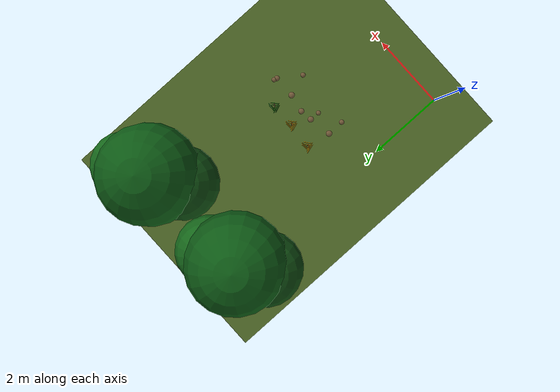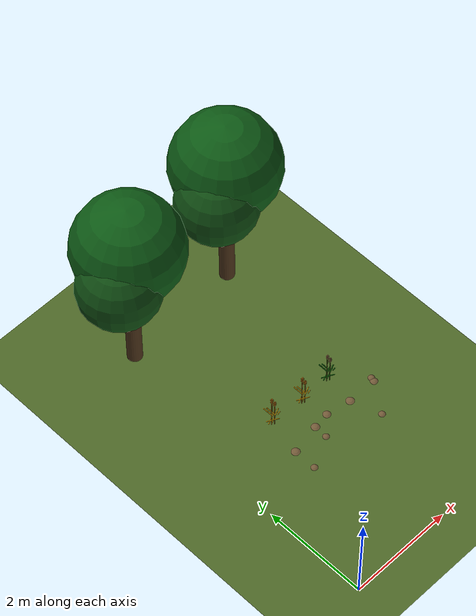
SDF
<sdf version="1.6">
 <world name="default">
  <model name="ground">
   <static>true</static>
   <link name="link">
    <collision name="col"><geometry><plane><normal>0 0 1</normal><size>40 40</size></plane></geometry></collision>
    <visual name="vis">
     <geometry><plane><normal>0 0 1</normal><size>40 40</size></plane></geometry>
     <material><ambient>0.30 0.40 0.15 1</ambient><diffuse>0.30 0.40 0.15 1</diffuse></material>
    </visual>
   </link>
  </model>
  <model name="plant_31">
   <static>true</static>
   <pose>1.27 3.26 0 0 0 0</pose>
   <link name="link">
    <visual name="stem_0">
     <pose>0.000 0.000 0.320 0.000 0.000 0.000</pose>
     <geometry><cylinder><radius>0.01</radius><length>0.64</length></cylinder></geometry>
     <material><ambient>0.55 0.42 0.08 1</ambient><diffuse>0.55 0.42 0.08 1</diffuse></material>
    </visual>
    <visual name="leaf_0_0">
     <pose>0.055 0.045 0.130 0.000 0.700 0.150</pose>
     <geometry><cylinder><radius>0.009</radius><length>0.3</length></cylinder></geometry>
     <material><ambient>0.95 0.73 0.06 1</ambient><diffuse>0.95 0.73 0.06 1</diffuse></material>
    </visual>
    <visual name="leaf_0_1">
     <pose>-0.055 -0.045 0.230 0.000 -0.720 1.900</pose>
     <geometry><cylinder><radius>0.009</radius><length>0.28</length></cylinder></geometry>
     <material><ambient>0.95 0.73 0.06 1</ambient><diffuse>0.95 0.73 0.06 1</diffuse></material>
    </visual>
    <visual name="leaf_0_2">
     <pose>0.055 -0.045 0.320 0.000 0.780 3.700</pose>
     <geometry><cylinder><radius>0.009</radius><length>0.24</length></cylinder></geometry>
     <material><ambient>0.95 0.73 0.06 1</ambient><diffuse>0.95 0.73 0.06 1</diffuse></material>
    </visual>
    <visual name="leaf_0_3">
     <pose>-0.055 0.045 0.400 0.000 -0.800 5.200</pose>
     <geometry><cylinder><radius>0.009</radius><length>0.2</length></cylinder></geometry>
     <material><ambient>0.95 0.73 0.06 1</ambient><diffuse>0.95 0.73 0.06 1</diffuse></material>
    </visual>
    <visual name="stem_1">
     <pose>0.045 -0.025 0.265 0.000 0.000 0.000</pose>
     <geometry><cylinder><radius>0.008</radius><length>0.53</length></cylinder></geometry>
     <material><ambient>0.55 0.42 0.08 1</ambient><diffuse>0.55 0.42 0.08 1</diffuse></material>
    </visual>
    <visual name="leaf_1_0">
     <pose>0.100 0.020 0.130 0.000 0.700 0.150</pose>
     <geometry><cylinder><radius>0.009</radius><length>0.3</length></cylinder></geometry>
     <material><ambient>0.95 0.73 0.06 1</ambient><diffuse>0.95 0.73 0.06 1</diffuse></material>
    </visual>
    <visual name="leaf_1_1">
     <pose>-0.010 -0.070 0.230 0.000 -0.720 1.900</pose>
     <geometry><cylinder><radius>0.009</radius><length>0.28</length></cylinder></geometry>
     <material><ambient>0.95 0.73 0.06 1</ambient><diffuse>0.95 0.73 0.06 1</diffuse></material>
    </visual>
    <visual name="leaf_1_2">
     <pose>0.100 -0.070 0.320 0.000 0.780 3.700</pose>
     <geometry><cylinder><radius>0.009</radius><length>0.24</length></cylinder></geometry>
     <material><ambient>0.95 0.73 0.06 1</ambient><diffuse>0.95 0.73 0.06 1</diffuse></material>
    </visual>
    <visual name="leaf_1_3">
     <pose>-0.010 0.020 0.400 0.000 -0.800 5.200</pose>
     <geometry><cylinder><radius>0.009</radius><length>0.2</length></cylinder></geometry>
     <material><ambient>0.95 0.73 0.06 1</ambient><diffuse>0.95 0.73 0.06 1</diffuse></material>
    </visual>
    <visual name="ear_axis_0">
     <pose>0.000 0.000 0.715 0.000 0.000 0.000</pose>
     <geometry><cylinder><radius>0.010</radius><length>0.13</length></cylinder></geometry>
     <material><ambient>0.72 0.45 0.08 1</ambient><diffuse>0.72 0.45 0.08 1</diffuse></material>
    </visual>
    <visual name="grain_0_0">
     <pose>0.012 -0.006 0.675 0.000 0.000 0.000</pose>
     <geometry><sphere><radius>0.012</radius></sphere></geometry>
     <material><ambient>0.72 0.45 0.08 1</ambient><diffuse>0.72 0.45 0.08 1</diffuse></material>
    </visual>
    <visual name="grain_0_1">
     <pose>-0.014 0.006 0.691 0.000 0.000 0.000</pose>
     <geometry><sphere><radius>0.012</radius></sphere></geometry>
     <material><ambient>0.72 0.45 0.08 1</ambient><diffuse>0.72 0.45 0.08 1</diffuse></material>
    </visual>
    <visual name="grain_0_2">
     <pose>0.016 -0.006 0.707 0.000 0.000 0.000</pose>
     <geometry><sphere><radius>0.012</radius></sphere></geometry>
     <material><ambient>0.72 0.45 0.08 1</ambient><diffuse>0.72 0.45 0.08 1</diffuse></material>
    </visual>
    <visual name="grain_0_3">
     <pose>-0.012 0.006 0.723 0.000 0.000 0.000</pose>
     <geometry><sphere><radius>0.012</radius></sphere></geometry>
     <material><ambient>0.72 0.45 0.08 1</ambient><diffuse>0.72 0.45 0.08 1</diffuse></material>
    </visual>
    <visual name="grain_0_4">
     <pose>0.014 -0.006 0.739 0.000 0.000 0.000</pose>
     <geometry><sphere><radius>0.012</radius></sphere></geometry>
     <material><ambient>0.72 0.45 0.08 1</ambient><diffuse>0.72 0.45 0.08 1</diffuse></material>
    </visual>
    <visual name="grain_0_5">
     <pose>-0.016 0.006 0.755 0.000 0.000 0.000</pose>
     <geometry><sphere><radius>0.012</radius></sphere></geometry>
     <material><ambient>0.72 0.45 0.08 1</ambient><diffuse>0.72 0.45 0.08 1</diffuse></material>
    </visual>
    <visual name="ear_axis_1">
     <pose>0.045 -0.025 0.605 0.000 0.000 0.000</pose>
     <geometry><cylinder><radius>0.010</radius><length>0.13</length></cylinder></geometry>
     <material><ambient>0.72 0.45 0.08 1</ambient><diffuse>0.72 0.45 0.08 1</diffuse></material>
    </visual>
    <visual name="grain_1_0">
     <pose>0.057 -0.031 0.565 0.000 0.000 0.000</pose>
     <geometry><sphere><radius>0.012</radius></sphere></geometry>
     <material><ambient>0.72 0.45 0.08 1</ambient><diffuse>0.72 0.45 0.08 1</diffuse></material>
    </visual>
    <visual name="grain_1_1">
     <pose>0.031 -0.019 0.581 0.000 0.000 0.000</pose>
     <geometry><sphere><radius>0.012</radius></sphere></geometry>
     <material><ambient>0.72 0.45 0.08 1</ambient><diffuse>0.72 0.45 0.08 1</diffuse></material>
    </visual>
    <visual name="grain_1_2">
     <pose>0.061 -0.031 0.597 0.000 0.000 0.000</pose>
     <geometry><sphere><radius>0.012</radius></sphere></geometry>
     <material><ambient>0.72 0.45 0.08 1</ambient><diffuse>0.72 0.45 0.08 1</diffuse></material>
    </visual>
    <visual name="grain_1_3">
     <pose>0.033 -0.019 0.613 0.000 0.000 0.000</pose>
     <geometry><sphere><radius>0.012</radius></sphere></geometry>
     <material><ambient>0.72 0.45 0.08 1</ambient><diffuse>0.72 0.45 0.08 1</diffuse></material>
    </visual>
    <visual name="grain_1_4">
     <pose>0.059 -0.031 0.629 0.000 0.000 0.000</pose>
     <geometry><sphere><radius>0.012</radius></sphere></geometry>
     <material><ambient>0.72 0.45 0.08 1</ambient><diffuse>0.72 0.45 0.08 1</diffuse></material>
    </visual>
    <visual name="grain_1_5">
     <pose>0.029 -0.019 0.645 0.000 0.000 0.000</pose>
     <geometry><sphere><radius>0.012</radius></sphere></geometry>
     <material><ambient>0.72 0.45 0.08 1</ambient><diffuse>0.72 0.45 0.08 1</diffuse></material>
    </visual>
   </link>
  </model>
  <model name="plant_32">
   <static>true</static>
   <pose>1.94 3.20 0 0 0 0</pose>
   <link name="link">
    <visual name="stem_0">
     <pose>0.000 0.000 0.320 0.000 0.000 0.000</pose>
     <geometry><cylinder><radius>0.01</radius><length>0.64</length></cylinder></geometry>
     <material><ambient>0.55 0.42 0.08 1</ambient><diffuse>0.55 0.42 0.08 1</diffuse></material>
    </visual>
    <visual name="leaf_0_0">
     <pose>0.055 0.045 0.130 0.000 0.700 0.150</pose>
     <geometry><cylinder><radius>0.009</radius><length>0.3</length></cylinder></geometry>
     <material><ambient>0.95 0.73 0.06 1</ambient><diffuse>0.95 0.73 0.06 1</diffuse></material>
    </visual>
    <visual name="leaf_0_1">
     <pose>-0.055 -0.045 0.230 0.000 -0.720 1.900</pose>
     <geometry><cylinder><radius>0.009</radius><length>0.28</length></cylinder></geometry>
     <material><ambient>0.95 0.73 0.06 1</ambient><diffuse>0.95 0.73 0.06 1</diffuse></material>
    </visual>
    <visual name="leaf_0_2">
     <pose>0.055 -0.045 0.320 0.000 0.780 3.700</pose>
     <geometry><cylinder><radius>0.009</radius><length>0.24</length></cylinder></geometry>
     <material><ambient>0.95 0.73 0.06 1</ambient><diffuse>0.95 0.73 0.06 1</diffuse></material>
    </visual>
    <visual name="leaf_0_3">
     <pose>-0.055 0.045 0.400 0.000 -0.800 5.200</pose>
     <geometry><cylinder><radius>0.009</radius><length>0.2</length></cylinder></geometry>
     <material><ambient>0.95 0.73 0.06 1</ambient><diffuse>0.95 0.73 0.06 1</diffuse></material>
    </visual>
    <visual name="stem_1">
     <pose>0.045 -0.025 0.265 0.000 0.000 0.000</pose>
     <geometry><cylinder><radius>0.008</radius><length>0.53</length></cylinder></geometry>
     <material><ambient>0.55 0.42 0.08 1</ambient><diffuse>0.55 0.42 0.08 1</diffuse></material>
    </visual>
    <visual name="leaf_1_0">
     <pose>0.100 0.020 0.130 0.000 0.700 0.150</pose>
     <geometry><cylinder><radius>0.009</radius><length>0.3</length></cylinder></geometry>
     <material><ambient>0.95 0.73 0.06 1</ambient><diffuse>0.95 0.73 0.06 1</diffuse></material>
    </visual>
    <visual name="leaf_1_1">
     <pose>-0.010 -0.070 0.230 0.000 -0.720 1.900</pose>
     <geometry><cylinder><radius>0.009</radius><length>0.28</length></cylinder></geometry>
     <material><ambient>0.95 0.73 0.06 1</ambient><diffuse>0.95 0.73 0.06 1</diffuse></material>
    </visual>
    <visual name="leaf_1_2">
     <pose>0.100 -0.070 0.320 0.000 0.780 3.700</pose>
     <geometry><cylinder><radius>0.009</radius><length>0.24</length></cylinder></geometry>
     <material><ambient>0.95 0.73 0.06 1</ambient><diffuse>0.95 0.73 0.06 1</diffuse></material>
    </visual>
    <visual name="leaf_1_3">
     <pose>-0.010 0.020 0.400 0.000 -0.800 5.200</pose>
     <geometry><cylinder><radius>0.009</radius><length>0.2</length></cylinder></geometry>
     <material><ambient>0.95 0.73 0.06 1</ambient><diffuse>0.95 0.73 0.06 1</diffuse></material>
    </visual>
    <visual name="ear_axis_0">
     <pose>0.000 0.000 0.715 0.000 0.000 0.000</pose>
     <geometry><cylinder><radius>0.010</radius><length>0.13</length></cylinder></geometry>
     <material><ambient>0.72 0.45 0.08 1</ambient><diffuse>0.72 0.45 0.08 1</diffuse></material>
    </visual>
    <visual name="grain_0_0">
     <pose>0.012 -0.006 0.675 0.000 0.000 0.000</pose>
     <geometry><sphere><radius>0.012</radius></sphere></geometry>
     <material><ambient>0.72 0.45 0.08 1</ambient><diffuse>0.72 0.45 0.08 1</diffuse></material>
    </visual>
    <visual name="grain_0_1">
     <pose>-0.014 0.006 0.691 0.000 0.000 0.000</pose>
     <geometry><sphere><radius>0.012</radius></sphere></geometry>
     <material><ambient>0.72 0.45 0.08 1</ambient><diffuse>0.72 0.45 0.08 1</diffuse></material>
    </visual>
    <visual name="grain_0_2">
     <pose>0.016 -0.006 0.707 0.000 0.000 0.000</pose>
     <geometry><sphere><radius>0.012</radius></sphere></geometry>
     <material><ambient>0.72 0.45 0.08 1</ambient><diffuse>0.72 0.45 0.08 1</diffuse></material>
    </visual>
    <visual name="grain_0_3">
     <pose>-0.012 0.006 0.723 0.000 0.000 0.000</pose>
     <geometry><sphere><radius>0.012</radius></sphere></geometry>
     <material><ambient>0.72 0.45 0.08 1</ambient><diffuse>0.72 0.45 0.08 1</diffuse></material>
    </visual>
    <visual name="grain_0_4">
     <pose>0.014 -0.006 0.739 0.000 0.000 0.000</pose>
     <geometry><sphere><radius>0.012</radius></sphere></geometry>
     <material><ambient>0.72 0.45 0.08 1</ambient><diffuse>0.72 0.45 0.08 1</diffuse></material>
    </visual>
    <visual name="grain_0_5">
     <pose>-0.016 0.006 0.755 0.000 0.000 0.000</pose>
     <geometry><sphere><radius>0.012</radius></sphere></geometry>
     <material><ambient>0.72 0.45 0.08 1</ambient><diffuse>0.72 0.45 0.08 1</diffuse></material>
    </visual>
    <visual name="ear_axis_1">
     <pose>0.045 -0.025 0.605 0.000 0.000 0.000</pose>
     <geometry><cylinder><radius>0.010</radius><length>0.13</length></cylinder></geometry>
     <material><ambient>0.72 0.45 0.08 1</ambient><diffuse>0.72 0.45 0.08 1</diffuse></material>
    </visual>
    <visual name="grain_1_0">
     <pose>0.057 -0.031 0.565 0.000 0.000 0.000</pose>
     <geometry><sphere><radius>0.012</radius></sphere></geometry>
     <material><ambient>0.72 0.45 0.08 1</ambient><diffuse>0.72 0.45 0.08 1</diffuse></material>
    </visual>
    <visual name="grain_1_1">
     <pose>0.031 -0.019 0.581 0.000 0.000 0.000</pose>
     <geometry><sphere><radius>0.012</radius></sphere></geometry>
     <material><ambient>0.72 0.45 0.08 1</ambient><diffuse>0.72 0.45 0.08 1</diffuse></material>
    </visual>
    <visual name="grain_1_2">
     <pose>0.061 -0.031 0.597 0.000 0.000 0.000</pose>
     <geometry><sphere><radius>0.012</radius></sphere></geometry>
     <material><ambient>0.72 0.45 0.08 1</ambient><diffuse>0.72 0.45 0.08 1</diffuse></material>
    </visual>
    <visual name="grain_1_3">
     <pose>0.033 -0.019 0.613 0.000 0.000 0.000</pose>
     <geometry><sphere><radius>0.012</radius></sphere></geometry>
     <material><ambient>0.72 0.45 0.08 1</ambient><diffuse>0.72 0.45 0.08 1</diffuse></material>
    </visual>
    <visual name="grain_1_4">
     <pose>0.059 -0.031 0.629 0.000 0.000 0.000</pose>
     <geometry><sphere><radius>0.012</radius></sphere></geometry>
     <material><ambient>0.72 0.45 0.08 1</ambient><diffuse>0.72 0.45 0.08 1</diffuse></material>
    </visual>
    <visual name="grain_1_5">
     <pose>0.029 -0.019 0.645 0.000 0.000 0.000</pose>
     <geometry><sphere><radius>0.012</radius></sphere></geometry>
     <material><ambient>0.72 0.45 0.08 1</ambient><diffuse>0.72 0.45 0.08 1</diffuse></material>
    </visual>
   </link>
  </model>
  <model name="plant_33">
   <static>true</static>
   <pose>2.57 3.22 0 0 0 0</pose>
   <link name="link">
    <visual name="stem_0">
     <pose>0.000 0.000 0.320 0.000 0.000 0.000</pose>
     <geometry><cylinder><radius>0.01</radius><length>0.64</length></cylinder></geometry>
     <material><ambient>0.30 0.38 0.08 1</ambient><diffuse>0.30 0.38 0.08 1</diffuse></material>
    </visual>
    <visual name="leaf_0_0">
     <pose>0.055 0.045 0.130 0.000 0.700 0.150</pose>
     <geometry><cylinder><radius>0.009</radius><length>0.3</length></cylinder></geometry>
     <material><ambient>0.10 0.48 0.06 1</ambient><diffuse>0.10 0.48 0.06 1</diffuse></material>
    </visual>
    <visual name="leaf_0_1">
     <pose>-0.055 -0.045 0.230 0.000 -0.720 1.900</pose>
     <geometry><cylinder><radius>0.009</radius><length>0.28</length></cylinder></geometry>
     <material><ambient>0.10 0.48 0.06 1</ambient><diffuse>0.10 0.48 0.06 1</diffuse></material>
    </visual>
    <visual name="leaf_0_2">
     <pose>0.055 -0.045 0.320 0.000 0.780 3.700</pose>
     <geometry><cylinder><radius>0.009</radius><length>0.24</length></cylinder></geometry>
     <material><ambient>0.10 0.48 0.06 1</ambient><diffuse>0.10 0.48 0.06 1</diffuse></material>
    </visual>
    <visual name="leaf_0_3">
     <pose>-0.055 0.045 0.400 0.000 -0.800 5.200</pose>
     <geometry><cylinder><radius>0.009</radius><length>0.2</length></cylinder></geometry>
     <material><ambient>0.10 0.48 0.06 1</ambient><diffuse>0.10 0.48 0.06 1</diffuse></material>
    </visual>
    <visual name="stem_1">
     <pose>0.045 -0.025 0.265 0.000 0.000 0.000</pose>
     <geometry><cylinder><radius>0.008</radius><length>0.53</length></cylinder></geometry>
     <material><ambient>0.30 0.38 0.08 1</ambient><diffuse>0.30 0.38 0.08 1</diffuse></material>
    </visual>
    <visual name="leaf_1_0">
     <pose>0.100 0.020 0.130 0.000 0.700 0.150</pose>
     <geometry><cylinder><radius>0.009</radius><length>0.3</length></cylinder></geometry>
     <material><ambient>0.10 0.48 0.06 1</ambient><diffuse>0.10 0.48 0.06 1</diffuse></material>
    </visual>
    <visual name="leaf_1_1">
     <pose>-0.010 -0.070 0.230 0.000 -0.720 1.900</pose>
     <geometry><cylinder><radius>0.009</radius><length>0.28</length></cylinder></geometry>
     <material><ambient>0.10 0.48 0.06 1</ambient><diffuse>0.10 0.48 0.06 1</diffuse></material>
    </visual>
    <visual name="leaf_1_2">
     <pose>0.100 -0.070 0.320 0.000 0.780 3.700</pose>
     <geometry><cylinder><radius>0.009</radius><length>0.24</length></cylinder></geometry>
     <material><ambient>0.10 0.48 0.06 1</ambient><diffuse>0.10 0.48 0.06 1</diffuse></material>
    </visual>
    <visual name="leaf_1_3">
     <pose>-0.010 0.020 0.400 0.000 -0.800 5.200</pose>
     <geometry><cylinder><radius>0.009</radius><length>0.2</length></cylinder></geometry>
     <material><ambient>0.10 0.48 0.06 1</ambient><diffuse>0.10 0.48 0.06 1</diffuse></material>
    </visual>
    <visual name="ear_axis_0">
     <pose>0.000 0.000 0.715 0.000 0.000 0.000</pose>
     <geometry><cylinder><radius>0.010</radius><length>0.13</length></cylinder></geometry>
     <material><ambient>0.52 0.40 0.25 1</ambient><diffuse>0.52 0.40 0.25 1</diffuse></material>
    </visual>
    <visual name="grain_0_0">
     <pose>0.012 -0.006 0.675 0.000 0.000 0.000</pose>
     <geometry><sphere><radius>0.012</radius></sphere></geometry>
     <material><ambient>0.52 0.40 0.25 1</ambient><diffuse>0.52 0.40 0.25 1</diffuse></material>
    </visual>
    <visual name="grain_0_1">
     <pose>-0.014 0.006 0.691 0.000 0.000 0.000</pose>
     <geometry><sphere><radius>0.012</radius></sphere></geometry>
     <material><ambient>0.52 0.40 0.25 1</ambient><diffuse>0.52 0.40 0.25 1</diffuse></material>
    </visual>
    <visual name="grain_0_2">
     <pose>0.016 -0.006 0.707 0.000 0.000 0.000</pose>
     <geometry><sphere><radius>0.012</radius></sphere></geometry>
     <material><ambient>0.52 0.40 0.25 1</ambient><diffuse>0.52 0.40 0.25 1</diffuse></material>
    </visual>
    <visual name="grain_0_3">
     <pose>-0.012 0.006 0.723 0.000 0.000 0.000</pose>
     <geometry><sphere><radius>0.012</radius></sphere></geometry>
     <material><ambient>0.52 0.40 0.25 1</ambient><diffuse>0.52 0.40 0.25 1</diffuse></material>
    </visual>
    <visual name="grain_0_4">
     <pose>0.014 -0.006 0.739 0.000 0.000 0.000</pose>
     <geometry><sphere><radius>0.012</radius></sphere></geometry>
     <material><ambient>0.52 0.40 0.25 1</ambient><diffuse>0.52 0.40 0.25 1</diffuse></material>
    </visual>
    <visual name="grain_0_5">
     <pose>-0.016 0.006 0.755 0.000 0.000 0.000</pose>
     <geometry><sphere><radius>0.012</radius></sphere></geometry>
     <material><ambient>0.52 0.40 0.25 1</ambient><diffuse>0.52 0.40 0.25 1</diffuse></material>
    </visual>
    <visual name="ear_axis_1">
     <pose>0.045 -0.025 0.605 0.000 0.000 0.000</pose>
     <geometry><cylinder><radius>0.010</radius><length>0.13</length></cylinder></geometry>
     <material><ambient>0.52 0.40 0.25 1</ambient><diffuse>0.52 0.40 0.25 1</diffuse></material>
    </visual>
    <visual name="grain_1_0">
     <pose>0.057 -0.031 0.565 0.000 0.000 0.000</pose>
     <geometry><sphere><radius>0.012</radius></sphere></geometry>
     <material><ambient>0.52 0.40 0.25 1</ambient><diffuse>0.52 0.40 0.25 1</diffuse></material>
    </visual>
    <visual name="grain_1_1">
     <pose>0.031 -0.019 0.581 0.000 0.000 0.000</pose>
     <geometry><sphere><radius>0.012</radius></sphere></geometry>
     <material><ambient>0.52 0.40 0.25 1</ambient><diffuse>0.52 0.40 0.25 1</diffuse></material>
    </visual>
    <visual name="grain_1_2">
     <pose>0.061 -0.031 0.597 0.000 0.000 0.000</pose>
     <geometry><sphere><radius>0.012</radius></sphere></geometry>
     <material><ambient>0.52 0.40 0.25 1</ambient><diffuse>0.52 0.40 0.25 1</diffuse></material>
    </visual>
    <visual name="grain_1_3">
     <pose>0.033 -0.019 0.613 0.000 0.000 0.000</pose>
     <geometry><sphere><radius>0.012</radius></sphere></geometry>
     <material><ambient>0.52 0.40 0.25 1</ambient><diffuse>0.52 0.40 0.25 1</diffuse></material>
    </visual>
    <visual name="grain_1_4">
     <pose>0.059 -0.031 0.629 0.000 0.000 0.000</pose>
     <geometry><sphere><radius>0.012</radius></sphere></geometry>
     <material><ambient>0.52 0.40 0.25 1</ambient><diffuse>0.52 0.40 0.25 1</diffuse></material>
    </visual>
    <visual name="grain_1_5">
     <pose>0.029 -0.019 0.645 0.000 0.000 0.000</pose>
     <geometry><sphere><radius>0.012</radius></sphere></geometry>
     <material><ambient>0.52 0.40 0.25 1</ambient><diffuse>0.52 0.40 0.25 1</diffuse></material>
    </visual>
   </link>
  </model>
  <model name="tree_n1">
   <static>true</static>
   <pose>0.61 5.93 0 0 0 0</pose>
   <link name="link">
    <collision name="trunk_col">
     <pose>0 0 1.1 0 0 0</pose>
     <geometry><cylinder><radius>0.16</radius><length>2.2</length></cylinder></geometry>
    </collision>
    <visual name="trunk">
     <pose>0 0 1.1 0 0 0</pose>
     <geometry><cylinder><radius>0.14</radius><length>2.2</length></cylinder></geometry>
     <material><ambient>0.30 0.20 0.10 1</ambient><diffuse>0.30 0.20 0.10 1</diffuse></material>
    </visual>
    <visual name="crown1">
     <pose>0 0 3.1 0 0 0</pose>
     <geometry><sphere><radius>1.0</radius></sphere></geometry>
     <material><ambient>0.05 0.35 0.08 1</ambient><diffuse>0.05 0.35 0.08 1</diffuse></material>
    </visual>
    <visual name="crown2">
     <pose>0.5 0.3 2.7 0 0 0</pose>
     <geometry><sphere><radius>0.7</radius></sphere></geometry>
     <material><ambient>0.08 0.40 0.10 1</ambient><diffuse>0.08 0.40 0.10 1</diffuse></material>
    </visual>
    <visual name="crown3">
     <pose>-0.5 -0.3 2.8 0 0 0</pose>
     <geometry><sphere><radius>0.75</radius></sphere></geometry>
     <material><ambient>0.06 0.30 0.07 1</ambient><diffuse>0.06 0.30 0.07 1</diffuse></material>
    </visual>
   </link>
  </model>
  <model name="tree_n2">
   <static>true</static>
   <pose>2.96 6.04 0 0 0 0</pose>
   <link name="link">
    <collision name="trunk_col">
     <pose>0 0 1.1 0 0 0</pose>
     <geometry><cylinder><radius>0.16</radius><length>2.2</length></cylinder></geometry>
    </collision>
    <visual name="trunk">
     <pose>0 0 1.1 0 0 0</pose>
     <geometry><cylinder><radius>0.14</radius><length>2.2</length></cylinder></geometry>
     <material><ambient>0.30 0.20 0.10 1</ambient><diffuse>0.30 0.20 0.10 1</diffuse></material>
    </visual>
    <visual name="crown1">
     <pose>0 0 3.1 0 0 0</pose>
     <geometry><sphere><radius>1.0</radius></sphere></geometry>
     <material><ambient>0.05 0.35 0.08 1</ambient><diffuse>0.05 0.35 0.08 1</diffuse></material>
    </visual>
    <visual name="crown2">
     <pose>0.5 0.3 2.7 0 0 0</pose>
     <geometry><sphere><radius>0.7</radius></sphere></geometry>
     <material><ambient>0.08 0.40 0.10 1</ambient><diffuse>0.08 0.40 0.10 1</diffuse></material>
    </visual>
    <visual name="crown3">
     <pose>-0.5 -0.3 2.8 0 0 0</pose>
     <geometry><sphere><radius>0.75</radius></sphere></geometry>
     <material><ambient>0.06 0.30 0.07 1</ambient><diffuse>0.06 0.30 0.07 1</diffuse></material>
    </visual>
   </link>
  </model>
  <model name="bump_2_01">
   <static>true</static>
   <pose>1.75 2.44 -0.067 0 0 0</pose>
   <link name="link">
    <collision name="c"><geometry><sphere><radius>0.087</radius></sphere></geometry></collision>
    <visual name="v">
     <geometry><sphere><radius>0.087</radius></sphere></geometry>
     <material><ambient>0.45 0.35 0.22 1</ambient><diffuse>0.45 0.35 0.22 1</diffuse></material>
    </visual>
   </link>
  </model>
  <model name="bump_2_11">
   <static>true</static>
   <pose>3.16 2.72 -0.068 0 0 0</pose>
   <link name="link">
    <collision name="c"><geometry><sphere><radius>0.088</radius></sphere></geometry></collision>
    <visual name="v">
     <geometry><sphere><radius>0.088</radius></sphere></geometry>
     <material><ambient>0.45 0.35 0.22 1</ambient><diffuse>0.45 0.35 0.22 1</diffuse></material>
    </visual>
   </link>
  </model>
  <model name="bump_2_13">
   <static>true</static>
   <pose>2.75 2.08 -0.073 0 0 0</pose>
   <link name="link">
    <collision name="c"><geometry><sphere><radius>0.093</radius></sphere></geometry></collision>
    <visual name="v">
     <geometry><sphere><radius>0.093</radius></sphere></geometry>
     <material><ambient>0.45 0.35 0.22 1</ambient><diffuse>0.45 0.35 0.22 1</diffuse></material>
    </visual>
   </link>
  </model>
  <model name="bump_2_15">
   <static>true</static>
   <pose>2.08 2.74 -0.097 0 0 0</pose>
   <link name="link">
    <collision name="c"><geometry><sphere><radius>0.117</radius></sphere></geometry></collision>
    <visual name="v">
     <geometry><sphere><radius>0.117</radius></sphere></geometry>
     <material><ambient>0.45 0.35 0.22 1</ambient><diffuse>0.45 0.35 0.22 1</diffuse></material>
    </visual>
   </link>
  </model>
  <model name="bump_2_17">
   <static>true</static>
   <pose>1.17 2.59 -0.113 0 0 0</pose>
   <link name="link">
    <collision name="c"><geometry><sphere><radius>0.133</radius></sphere></geometry></collision>
    <visual name="v">
     <geometry><sphere><radius>0.133</radius></sphere></geometry>
     <material><ambient>0.45 0.35 0.22 1</ambient><diffuse>0.45 0.35 0.22 1</diffuse></material>
    </visual>
   </link>
  </model>
  <model name="bump_2_20">
   <static>true</static>
   <pose>1.76 2.70 -0.107 0 0 0</pose>
   <link name="link">
    <collision name="c"><geometry><sphere><radius>0.127</radius></sphere></geometry></collision>
    <visual name="v">
     <geometry><sphere><radius>0.127</radius></sphere></geometry>
     <material><ambient>0.45 0.35 0.22 1</ambient><diffuse>0.45 0.35 0.22 1</diffuse></material>
    </visual>
   </link>
  </model>
  <model name="bump_2_21">
   <static>true</static>
   <pose>2.56 2.65 -0.112 0 0 0</pose>
   <link name="link">
    <collision name="c"><geometry><sphere><radius>0.132</radius></sphere></geometry></collision>
    <visual name="v">
     <geometry><sphere><radius>0.132</radius></sphere></geometry>
     <material><ambient>0.45 0.35 0.22 1</ambient><diffuse>0.45 0.35 0.22 1</diffuse></material>
    </visual>
   </link>
  </model>
  <model name="bump_2_22">
   <static>true</static>
   <pose>3.14 2.64 -0.088 0 0 0</pose>
   <link name="link">
    <collision name="c"><geometry><sphere><radius>0.108</radius></sphere></geometry></collision>
    <visual name="v">
     <geometry><sphere><radius>0.108</radius></sphere></geometry>
     <material><ambient>0.45 0.35 0.22 1</ambient><diffuse>0.45 0.35 0.22 1</diffuse></material>
    </visual>
   </link>
  </model>
  <model name="bump_2_23">
   <static>true</static>
   <pose>1.17 2.15 -0.074 0 0 0</pose>
   <link name="link">
    <collision name="c"><geometry><sphere><radius>0.094</radius></sphere></geometry></collision>
    <visual name="v">
     <geometry><sphere><radius>0.094</radius></sphere></geometry>
     <material><ambient>0.45 0.35 0.22 1</ambient><diffuse>0.45 0.35 0.22 1</diffuse></material>
    </visual>
   </link>
  </model>
 </world>
</sdf>
